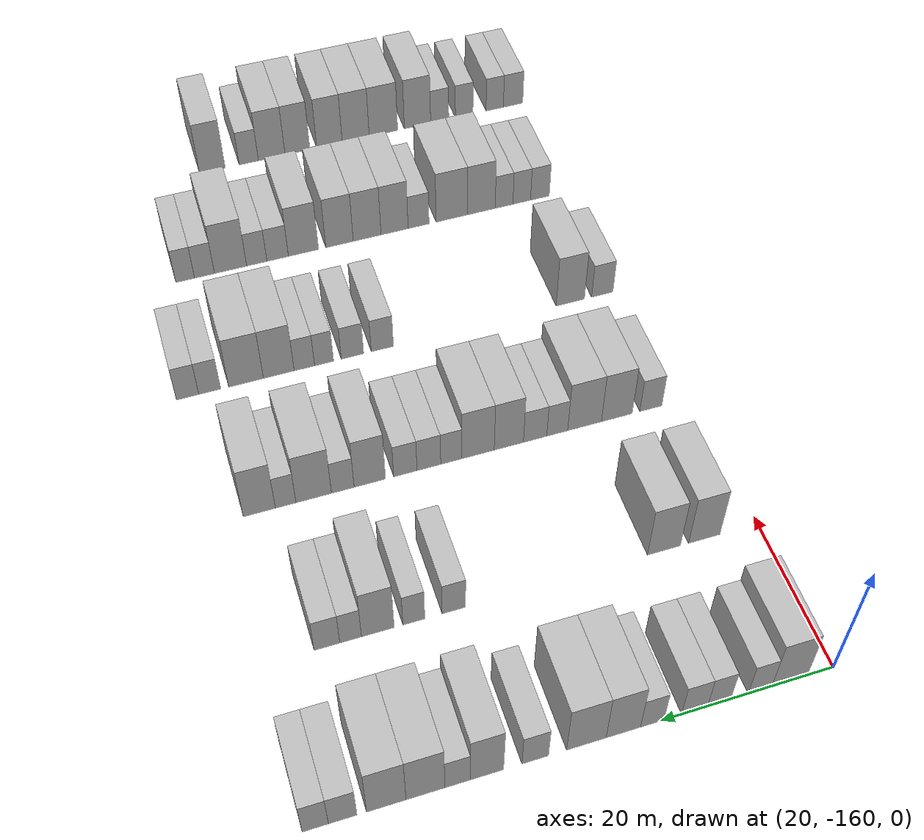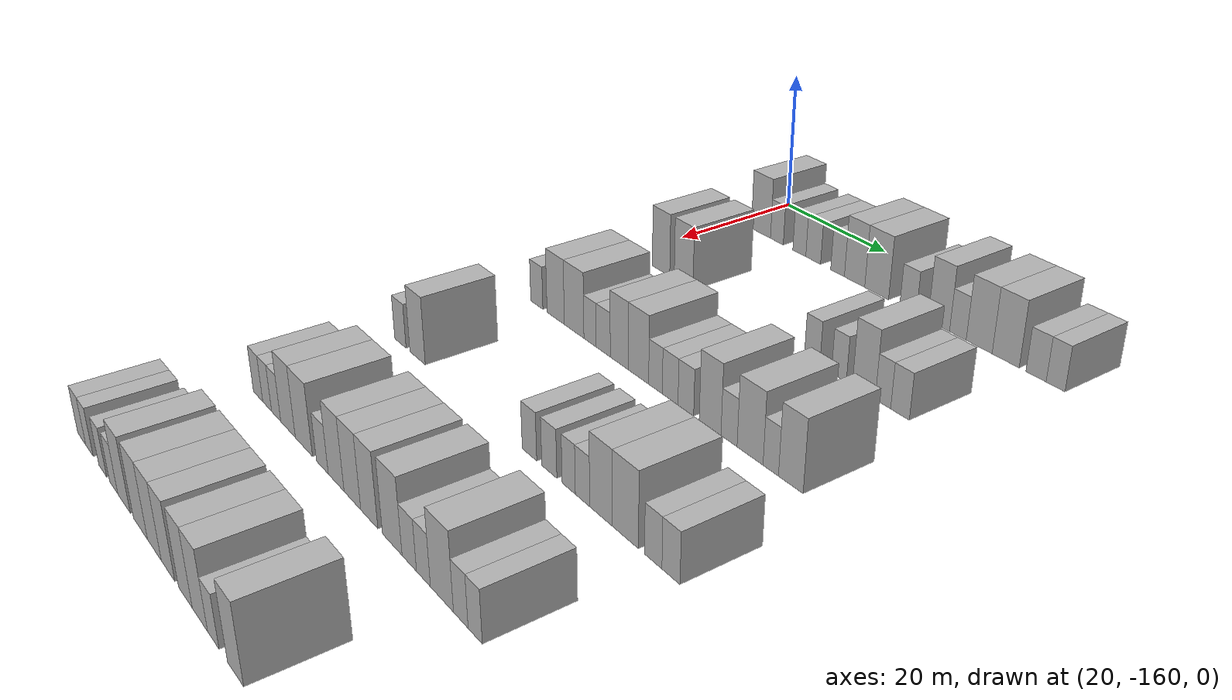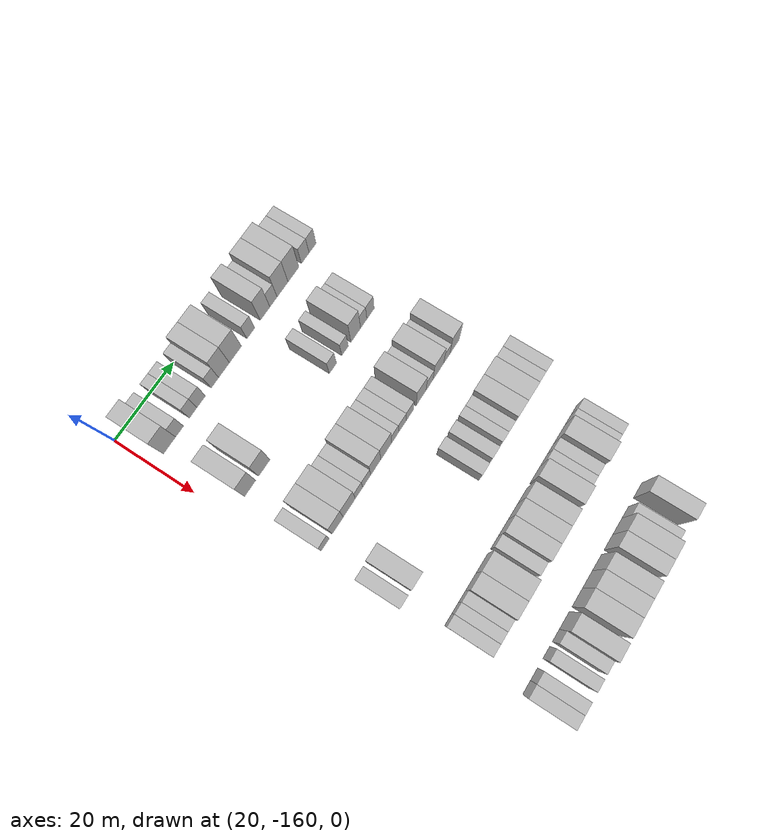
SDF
<sdf version="1.6">
 <world name="default">
  <model name="building_47">
   <static>1</static>
   <pose>25.0000 -154.8127 0 0.000000 0.000000 0.000000</pose>
   <link name="link">
    <pose>0 0 4.50 0 0 0</pose>
    <collision name="collision"><geometry><box><size>10.0000 4.1857 9.0000</size></box></geometry></collision>
    <visual name="visual">
     <cast_shadows>0</cast_shadows>
     <geometry><box><size>10.0000 4.1857 9.0000</size></box></geometry>
     <material>
      <script>
       <uri>model://HANNAS_wall/materials/scripts</uri>
       <uri>model://HANNAS_wall/materials/textures</uri>
       <name>vrc/HANNAS_wall</name>
      </script>
     </material>
    </visual>
   </link>
  </model>
  <model name="building_48">
   <static>1</static>
   <pose>25.0000 -151.3458 0 0.000000 0.000000 0.000000</pose>
   <link name="link">
    <pose>0 0 3.00 0 0 0</pose>
    <collision name="collision"><geometry><box><size>10.0000 2.7481 6.0000</size></box></geometry></collision>
    <visual name="visual">
     <cast_shadows>0</cast_shadows>
     <geometry><box><size>10.0000 2.7481 6.0000</size></box></geometry>
     <material>
      <script>
       <uri>model://HANNAS_wall/materials/scripts</uri>
       <uri>model://HANNAS_wall/materials/textures</uri>
       <name>vrc/HANNAS_wall</name>
      </script>
     </material>
    </visual>
   </link>
  </model>
  <model name="building_49">
   <static>1</static>
   <pose>25.0000 -146.6319 0 0.000000 0.000000 0.000000</pose>
   <link name="link">
    <pose>0 0 3.00 0 0 0</pose>
    <collision name="collision"><geometry><box><size>10.0000 2.6798 6.0000</size></box></geometry></collision>
    <visual name="visual">
     <cast_shadows>0</cast_shadows>
     <geometry><box><size>10.0000 2.6798 6.0000</size></box></geometry>
     <material>
      <script>
       <uri>model://HANNAS_wall/materials/scripts</uri>
       <uri>model://HANNAS_wall/materials/textures</uri>
       <name>vrc/HANNAS_wall</name>
      </script>
     </material>
    </visual>
   </link>
  </model>
  <model name="building_50">
   <static>1</static>
   <pose>25.0000 -143.8004 0 0.000000 0.000000 0.000000</pose>
   <link name="link">
    <pose>0 0 3.00 0 0 0</pose>
    <collision name="collision"><geometry><box><size>10.0000 2.9833 6.0000</size></box></geometry></collision>
    <visual name="visual">
     <cast_shadows>0</cast_shadows>
     <geometry><box><size>10.0000 2.9833 6.0000</size></box></geometry>
     <material>
      <script>
       <uri>model://HANNAS_wall/materials/scripts</uri>
       <uri>model://HANNAS_wall/materials/textures</uri>
       <name>vrc/HANNAS_wall</name>
      </script>
     </material>
    </visual>
   </link>
  </model>
  <model name="building_51">
   <static>1</static>
   <pose>25.0000 -138.9763 0 0.000000 0.000000 0.000000</pose>
   <link name="link">
    <pose>0 0 3.00 0 0 0</pose>
    <collision name="collision"><geometry><box><size>10.0000 2.6649 6.0000</size></box></geometry></collision>
    <visual name="visual">
     <cast_shadows>0</cast_shadows>
     <geometry><box><size>10.0000 2.6649 6.0000</size></box></geometry>
     <material>
      <script>
       <uri>model://HANNAS_wall/materials/scripts</uri>
       <uri>model://HANNAS_wall/materials/textures</uri>
       <name>vrc/HANNAS_wall</name>
      </script>
     </material>
    </visual>
   </link>
  </model>
  <model name="building_52">
   <static>1</static>
   <pose>25.0000 -135.7152 0 0.000000 0.000000 0.000000</pose>
   <link name="link">
    <pose>0 0 4.50 0 0 0</pose>
    <collision name="collision"><geometry><box><size>10.0000 3.8572 9.0000</size></box></geometry></collision>
    <visual name="visual">
     <cast_shadows>0</cast_shadows>
     <geometry><box><size>10.0000 3.8572 9.0000</size></box></geometry>
     <material>
      <script>
       <uri>model://HANNAS_wall/materials/scripts</uri>
       <uri>model://HANNAS_wall/materials/textures</uri>
       <name>vrc/HANNAS_wall</name>
      </script>
     </material>
    </visual>
   </link>
  </model>
  <model name="building_53">
   <static>1</static>
   <pose>25.0000 -131.5983 0 0.000000 0.000000 0.000000</pose>
   <link name="link">
    <pose>0 0 4.50 0 0 0</pose>
    <collision name="collision"><geometry><box><size>10.0000 4.3767 9.0000</size></box></geometry></collision>
    <visual name="visual">
     <cast_shadows>0</cast_shadows>
     <geometry><box><size>10.0000 4.3767 9.0000</size></box></geometry>
     <material>
      <script>
       <uri>model://HANNAS_wall/materials/scripts</uri>
       <uri>model://HANNAS_wall/materials/textures</uri>
       <name>vrc/HANNAS_wall</name>
      </script>
     </material>
    </visual>
   </link>
  </model>
  <model name="building_54">
   <static>1</static>
   <pose>25.0000 -125.9597 0 0.000000 0.000000 0.000000</pose>
   <link name="link">
    <pose>0 0 3.00 0 0 0</pose>
    <collision name="collision"><geometry><box><size>10.0000 2.9005 6.0000</size></box></geometry></collision>
    <visual name="visual">
     <cast_shadows>0</cast_shadows>
     <geometry><box><size>10.0000 2.9005 6.0000</size></box></geometry>
     <material>
      <script>
       <uri>model://HANNAS_wall/materials/scripts</uri>
       <uri>model://HANNAS_wall/materials/textures</uri>
       <name>vrc/HANNAS_wall</name>
      </script>
     </material>
    </visual>
   </link>
  </model>
  <model name="building_55">
   <static>1</static>
   <pose>25.0000 -120.7064 0 0.000000 0.000000 0.000000</pose>
   <link name="link">
    <pose>0 0 4.50 0 0 0</pose>
    <collision name="collision"><geometry><box><size>10.0000 3.6061 9.0000</size></box></geometry></collision>
    <visual name="visual">
     <cast_shadows>0</cast_shadows>
     <geometry><box><size>10.0000 3.6061 9.0000</size></box></geometry>
     <material>
      <script>
       <uri>model://HANNAS_wall/materials/scripts</uri>
       <uri>model://HANNAS_wall/materials/textures</uri>
       <name>vrc/HANNAS_wall</name>
      </script>
     </material>
    </visual>
   </link>
  </model>
  <model name="building_56">
   <static>1</static>
   <pose>25.0000 -117.5425 0 0.000000 0.000000 0.000000</pose>
   <link name="link">
    <pose>0 0 3.00 0 0 0</pose>
    <collision name="collision"><geometry><box><size>10.0000 2.7217 6.0000</size></box></geometry></collision>
    <visual name="visual">
     <cast_shadows>0</cast_shadows>
     <geometry><box><size>10.0000 2.7217 6.0000</size></box></geometry>
     <material>
      <script>
       <uri>model://HANNAS_wall/materials/scripts</uri>
       <uri>model://HANNAS_wall/materials/textures</uri>
       <name>vrc/HANNAS_wall</name>
      </script>
     </material>
    </visual>
   </link>
  </model>
  <model name="building_57">
   <static>1</static>
   <pose>25.0000 -114.1251 0 0.000000 0.000000 0.000000</pose>
   <link name="link">
    <pose>0 0 4.50 0 0 0</pose>
    <collision name="collision"><geometry><box><size>10.0000 4.1131 9.0000</size></box></geometry></collision>
    <visual name="visual">
     <cast_shadows>0</cast_shadows>
     <geometry><box><size>10.0000 4.1131 9.0000</size></box></geometry>
     <material>
      <script>
       <uri>model://HANNAS_wall/materials/scripts</uri>
       <uri>model://HANNAS_wall/materials/textures</uri>
       <name>vrc/HANNAS_wall</name>
      </script>
     </material>
    </visual>
   </link>
  </model>
  <model name="building_58">
   <static>1</static>
   <pose>25.0000 -109.9972 0 0.000000 0.000000 0.000000</pose>
   <link name="link">
    <pose>0 0 4.50 0 0 0</pose>
    <collision name="collision"><geometry><box><size>10.0000 4.1427 9.0000</size></box></geometry></collision>
    <visual name="visual">
     <cast_shadows>0</cast_shadows>
     <geometry><box><size>10.0000 4.1427 9.0000</size></box></geometry>
     <material>
      <script>
       <uri>model://HANNAS_wall/materials/scripts</uri>
       <uri>model://HANNAS_wall/materials/textures</uri>
       <name>vrc/HANNAS_wall</name>
      </script>
     </material>
    </visual>
   </link>
  </model>
  <model name="building_59">
   <static>1</static>
   <pose>25.0000 -105.4432 0 0.000000 0.000000 0.000000</pose>
   <link name="link">
    <pose>0 0 3.00 0 0 0</pose>
    <collision name="collision"><geometry><box><size>10.0000 2.9653 6.0000</size></box></geometry></collision>
    <visual name="visual">
     <cast_shadows>0</cast_shadows>
     <geometry><box><size>10.0000 2.9653 6.0000</size></box></geometry>
     <material>
      <script>
       <uri>model://HANNAS_wall/materials/scripts</uri>
       <uri>model://HANNAS_wall/materials/textures</uri>
       <name>vrc/HANNAS_wall</name>
      </script>
     </material>
    </visual>
   </link>
  </model>
  <model name="building_60">
   <static>1</static>
   <pose>25.0000 -102.6076 0 0.000000 0.000000 0.000000</pose>
   <link name="link">
    <pose>0 0 3.00 0 0 0</pose>
    <collision name="collision"><geometry><box><size>10.0000 2.7059 6.0000</size></box></geometry></collision>
    <visual name="visual">
     <cast_shadows>0</cast_shadows>
     <geometry><box><size>10.0000 2.7059 6.0000</size></box></geometry>
     <material>
      <script>
       <uri>model://HANNAS_wall/materials/scripts</uri>
       <uri>model://HANNAS_wall/materials/textures</uri>
       <name>vrc/HANNAS_wall</name>
      </script>
     </material>
    </visual>
   </link>
  </model>
  <model name="building_213">
   <static>1</static>
   <pose>44.0000 -153.2522 0 0.000000 0.000000 0.000000</pose>
   <link name="link">
    <pose>0 0 4.50 0 0 0</pose>
    <collision name="collision"><geometry><box><size>10.0000 3.8989 9.0000</size></box></geometry></collision>
    <visual name="visual">
     <cast_shadows>0</cast_shadows>
     <geometry><box><size>10.0000 3.8989 9.0000</size></box></geometry>
     <material>
      <script>
       <uri>model://HANNAS_wall/materials/scripts</uri>
       <uri>model://HANNAS_wall/materials/textures</uri>
       <name>vrc/HANNAS_wall</name>
      </script>
     </material>
    </visual>
   </link>
  </model>
  <model name="building_214">
   <static>1</static>
   <pose>44.0000 -148.2790 0 0.000000 0.000000 0.000000</pose>
   <link name="link">
    <pose>0 0 4.50 0 0 0</pose>
    <collision name="collision"><geometry><box><size>10.0000 4.0474 9.0000</size></box></geometry></collision>
    <visual name="visual">
     <cast_shadows>0</cast_shadows>
     <geometry><box><size>10.0000 4.0474 9.0000</size></box></geometry>
     <material>
      <script>
       <uri>model://HANNAS_wall/materials/scripts</uri>
       <uri>model://HANNAS_wall/materials/textures</uri>
       <name>vrc/HANNAS_wall</name>
      </script>
     </material>
    </visual>
   </link>
  </model>
  <model name="building_215">
   <static>1</static>
   <pose>44.0000 -123.1917 0 0.000000 0.000000 0.000000</pose>
   <link name="link">
    <pose>0 0 3.00 0 0 0</pose>
    <collision name="collision"><geometry><box><size>10.0000 2.7090 6.0000</size></box></geometry></collision>
    <visual name="visual">
     <cast_shadows>0</cast_shadows>
     <geometry><box><size>10.0000 2.7090 6.0000</size></box></geometry>
     <material>
      <script>
       <uri>model://HANNAS_wall/materials/scripts</uri>
       <uri>model://HANNAS_wall/materials/textures</uri>
       <name>vrc/HANNAS_wall</name>
      </script>
     </material>
    </visual>
   </link>
  </model>
  <model name="building_216">
   <static>1</static>
   <pose>44.0000 -118.5821 0 0.000000 0.000000 0.000000</pose>
   <link name="link">
    <pose>0 0 3.00 0 0 0</pose>
    <collision name="collision"><geometry><box><size>10.0000 2.5103 6.0000</size></box></geometry></collision>
    <visual name="visual">
     <cast_shadows>0</cast_shadows>
     <geometry><box><size>10.0000 2.5103 6.0000</size></box></geometry>
     <material>
      <script>
       <uri>model://HANNAS_wall/materials/scripts</uri>
       <uri>model://HANNAS_wall/materials/textures</uri>
       <name>vrc/HANNAS_wall</name>
      </script>
     </material>
    </visual>
   </link>
  </model>
  <model name="building_217">
   <static>1</static>
   <pose>44.0000 -114.4714 0 0.000000 0.000000 0.000000</pose>
   <link name="link">
    <pose>0 0 4.50 0 0 0</pose>
    <collision name="collision"><geometry><box><size>10.0000 3.7112 9.0000</size></box></geometry></collision>
    <visual name="visual">
     <cast_shadows>0</cast_shadows>
     <geometry><box><size>10.0000 3.7112 9.0000</size></box></geometry>
     <material>
      <script>
       <uri>model://HANNAS_wall/materials/scripts</uri>
       <uri>model://HANNAS_wall/materials/textures</uri>
       <name>vrc/HANNAS_wall</name>
      </script>
     </material>
    </visual>
   </link>
  </model>
  <model name="building_218">
   <static>1</static>
   <pose>44.0000 -111.3944 0 0.000000 0.000000 0.000000</pose>
   <link name="link">
    <pose>0 0 3.00 0 0 0</pose>
    <collision name="collision"><geometry><box><size>10.0000 2.4427 6.0000</size></box></geometry></collision>
    <visual name="visual">
     <cast_shadows>0</cast_shadows>
     <geometry><box><size>10.0000 2.4427 6.0000</size></box></geometry>
     <material>
      <script>
       <uri>model://HANNAS_wall/materials/scripts</uri>
       <uri>model://HANNAS_wall/materials/textures</uri>
       <name>vrc/HANNAS_wall</name>
      </script>
     </material>
    </visual>
   </link>
  </model>
  <model name="building_219">
   <static>1</static>
   <pose>44.0000 -108.7321 0 0.000000 0.000000 0.000000</pose>
   <link name="link">
    <pose>0 0 3.00 0 0 0</pose>
    <collision name="collision"><geometry><box><size>10.0000 2.8820 6.0000</size></box></geometry></collision>
    <visual name="visual">
     <cast_shadows>0</cast_shadows>
     <geometry><box><size>10.0000 2.8820 6.0000</size></box></geometry>
     <material>
      <script>
       <uri>model://HANNAS_wall/materials/scripts</uri>
       <uri>model://HANNAS_wall/materials/textures</uri>
       <name>vrc/HANNAS_wall</name>
      </script>
     </material>
    </visual>
   </link>
  </model>
  <model name="building_377">
   <static>1</static>
   <pose>63.0000 -154.5095 0 0.000000 0.000000 0.000000</pose>
   <link name="link">
    <pose>0 0 3.00 0 0 0</pose>
    <collision name="collision"><geometry><box><size>10.0000 2.9000 6.0000</size></box></geometry></collision>
    <visual name="visual">
     <cast_shadows>0</cast_shadows>
     <geometry><box><size>10.0000 2.9000 6.0000</size></box></geometry>
     <material>
      <script>
       <uri>model://HANNAS_wall/materials/scripts</uri>
       <uri>model://HANNAS_wall/materials/textures</uri>
       <name>vrc/HANNAS_wall</name>
      </script>
     </material>
    </visual>
   </link>
  </model>
  <model name="building_378">
   <static>1</static>
   <pose>63.0000 -150.0449 0 0.000000 0.000000 0.000000</pose>
   <link name="link">
    <pose>0 0 4.50 0 0 0</pose>
    <collision name="collision"><geometry><box><size>10.0000 4.0292 9.0000</size></box></geometry></collision>
    <visual name="visual">
     <cast_shadows>0</cast_shadows>
     <geometry><box><size>10.0000 4.0292 9.0000</size></box></geometry>
     <material>
      <script>
       <uri>model://HANNAS_wall/materials/scripts</uri>
       <uri>model://HANNAS_wall/materials/textures</uri>
       <name>vrc/HANNAS_wall</name>
      </script>
     </material>
    </visual>
   </link>
  </model>
  <model name="building_379">
   <static>1</static>
   <pose>63.0000 -145.8440 0 0.000000 0.000000 0.000000</pose>
   <link name="link">
    <pose>0 0 4.50 0 0 0</pose>
    <collision name="collision"><geometry><box><size>10.0000 4.3724 9.0000</size></box></geometry></collision>
    <visual name="visual">
     <cast_shadows>0</cast_shadows>
     <geometry><box><size>10.0000 4.3724 9.0000</size></box></geometry>
     <material>
      <script>
       <uri>model://HANNAS_wall/materials/scripts</uri>
       <uri>model://HANNAS_wall/materials/textures</uri>
       <name>vrc/HANNAS_wall</name>
      </script>
     </material>
    </visual>
   </link>
  </model>
  <model name="building_380">
   <static>1</static>
   <pose>63.0000 -142.3170 0 0.000000 0.000000 0.000000</pose>
   <link name="link">
    <pose>0 0 3.00 0 0 0</pose>
    <collision name="collision"><geometry><box><size>10.0000 2.6815 6.0000</size></box></geometry></collision>
    <visual name="visual">
     <cast_shadows>0</cast_shadows>
     <geometry><box><size>10.0000 2.6815 6.0000</size></box></geometry>
     <material>
      <script>
       <uri>model://HANNAS_wall/materials/scripts</uri>
       <uri>model://HANNAS_wall/materials/textures</uri>
       <name>vrc/HANNAS_wall</name>
      </script>
     </material>
    </visual>
   </link>
  </model>
  <model name="building_381">
   <static>1</static>
   <pose>63.0000 -139.4863 0 0.000000 0.000000 0.000000</pose>
   <link name="link">
    <pose>0 0 3.00 0 0 0</pose>
    <collision name="collision"><geometry><box><size>10.0000 2.9799 6.0000</size></box></geometry></collision>
    <visual name="visual">
     <cast_shadows>0</cast_shadows>
     <geometry><box><size>10.0000 2.9799 6.0000</size></box></geometry>
     <material>
      <script>
       <uri>model://HANNAS_wall/materials/scripts</uri>
       <uri>model://HANNAS_wall/materials/textures</uri>
       <name>vrc/HANNAS_wall</name>
      </script>
     </material>
    </visual>
   </link>
  </model>
  <model name="building_382">
   <static>1</static>
   <pose>63.0000 -136.1417 0 0.000000 0.000000 0.000000</pose>
   <link name="link">
    <pose>0 0 4.50 0 0 0</pose>
    <collision name="collision"><geometry><box><size>10.0000 3.7093 9.0000</size></box></geometry></collision>
    <visual name="visual">
     <cast_shadows>0</cast_shadows>
     <geometry><box><size>10.0000 3.7093 9.0000</size></box></geometry>
     <material>
      <script>
       <uri>model://HANNAS_wall/materials/scripts</uri>
       <uri>model://HANNAS_wall/materials/textures</uri>
       <name>vrc/HANNAS_wall</name>
      </script>
     </material>
    </visual>
   </link>
  </model>
  <model name="building_383">
   <static>1</static>
   <pose>63.0000 -132.2561 0 0.000000 0.000000 0.000000</pose>
   <link name="link">
    <pose>0 0 4.50 0 0 0</pose>
    <collision name="collision"><geometry><box><size>10.0000 4.0619 9.0000</size></box></geometry></collision>
    <visual name="visual">
     <cast_shadows>0</cast_shadows>
     <geometry><box><size>10.0000 4.0619 9.0000</size></box></geometry>
     <material>
      <script>
       <uri>model://HANNAS_wall/materials/scripts</uri>
       <uri>model://HANNAS_wall/materials/textures</uri>
       <name>vrc/HANNAS_wall</name>
      </script>
     </material>
    </visual>
   </link>
  </model>
  <model name="building_384">
   <static>1</static>
   <pose>63.0000 -128.9092 0 0.000000 0.000000 0.000000</pose>
   <link name="link">
    <pose>0 0 3.00 0 0 0</pose>
    <collision name="collision"><geometry><box><size>10.0000 2.6318 6.0000</size></box></geometry></collision>
    <visual name="visual">
     <cast_shadows>0</cast_shadows>
     <geometry><box><size>10.0000 2.6318 6.0000</size></box></geometry>
     <material>
      <script>
       <uri>model://HANNAS_wall/materials/scripts</uri>
       <uri>model://HANNAS_wall/materials/textures</uri>
       <name>vrc/HANNAS_wall</name>
      </script>
     </material>
    </visual>
   </link>
  </model>
  <model name="building_385">
   <static>1</static>
   <pose>63.0000 -126.1180 0 0.000000 0.000000 0.000000</pose>
   <link name="link">
    <pose>0 0 3.00 0 0 0</pose>
    <collision name="collision"><geometry><box><size>10.0000 2.9507 6.0000</size></box></geometry></collision>
    <visual name="visual">
     <cast_shadows>0</cast_shadows>
     <geometry><box><size>10.0000 2.9507 6.0000</size></box></geometry>
     <material>
      <script>
       <uri>model://HANNAS_wall/materials/scripts</uri>
       <uri>model://HANNAS_wall/materials/textures</uri>
       <name>vrc/HANNAS_wall</name>
      </script>
     </material>
    </visual>
   </link>
  </model>
  <model name="building_386">
   <static>1</static>
   <pose>63.0000 -123.2066 0 0.000000 0.000000 0.000000</pose>
   <link name="link">
    <pose>0 0 3.00 0 0 0</pose>
    <collision name="collision"><geometry><box><size>10.0000 2.8719 6.0000</size></box></geometry></collision>
    <visual name="visual">
     <cast_shadows>0</cast_shadows>
     <geometry><box><size>10.0000 2.8719 6.0000</size></box></geometry>
     <material>
      <script>
       <uri>model://HANNAS_wall/materials/scripts</uri>
       <uri>model://HANNAS_wall/materials/textures</uri>
       <name>vrc/HANNAS_wall</name>
      </script>
     </material>
    </visual>
   </link>
  </model>
  <model name="building_387">
   <static>1</static>
   <pose>63.0000 -118.8583 0 0.000000 0.000000 0.000000</pose>
   <link name="link">
    <pose>0 0 4.50 0 0 0</pose>
    <collision name="collision"><geometry><box><size>10.0000 3.8247 9.0000</size></box></geometry></collision>
    <visual name="visual">
     <cast_shadows>0</cast_shadows>
     <geometry><box><size>10.0000 3.8247 9.0000</size></box></geometry>
     <material>
      <script>
       <uri>model://HANNAS_wall/materials/scripts</uri>
       <uri>model://HANNAS_wall/materials/textures</uri>
       <name>vrc/HANNAS_wall</name>
      </script>
     </material>
    </visual>
   </link>
  </model>
  <model name="building_388">
   <static>1</static>
   <pose>63.0000 -115.5741 0 0.000000 0.000000 0.000000</pose>
   <link name="link">
    <pose>0 0 3.00 0 0 0</pose>
    <collision name="collision"><geometry><box><size>10.0000 2.7438 6.0000</size></box></geometry></collision>
    <visual name="visual">
     <cast_shadows>0</cast_shadows>
     <geometry><box><size>10.0000 2.7438 6.0000</size></box></geometry>
     <material>
      <script>
       <uri>model://HANNAS_wall/materials/scripts</uri>
       <uri>model://HANNAS_wall/materials/textures</uri>
       <name>vrc/HANNAS_wall</name>
      </script>
     </material>
    </visual>
   </link>
  </model>
  <model name="building_389">
   <static>1</static>
   <pose>63.0000 -112.0683 0 0.000000 0.000000 0.000000</pose>
   <link name="link">
    <pose>0 0 4.50 0 0 0</pose>
    <collision name="collision"><geometry><box><size>10.0000 4.2677 9.0000</size></box></geometry></collision>
    <visual name="visual">
     <cast_shadows>0</cast_shadows>
     <geometry><box><size>10.0000 4.2677 9.0000</size></box></geometry>
     <material>
      <script>
       <uri>model://HANNAS_wall/materials/scripts</uri>
       <uri>model://HANNAS_wall/materials/textures</uri>
       <name>vrc/HANNAS_wall</name>
      </script>
     </material>
    </visual>
   </link>
  </model>
  <model name="building_390">
   <static>1</static>
   <pose>63.0000 -108.7048 0 0.000000 0.000000 0.000000</pose>
   <link name="link">
    <pose>0 0 3.00 0 0 0</pose>
    <collision name="collision"><geometry><box><size>10.0000 2.4594 6.0000</size></box></geometry></collision>
    <visual name="visual">
     <cast_shadows>0</cast_shadows>
     <geometry><box><size>10.0000 2.4594 6.0000</size></box></geometry>
     <material>
      <script>
       <uri>model://HANNAS_wall/materials/scripts</uri>
       <uri>model://HANNAS_wall/materials/textures</uri>
       <name>vrc/HANNAS_wall</name>
      </script>
     </material>
    </visual>
   </link>
  </model>
  <model name="building_391">
   <static>1</static>
   <pose>63.0000 -105.5727 0 0.000000 0.000000 0.000000</pose>
   <link name="link">
    <pose>0 0 4.50 0 0 0</pose>
    <collision name="collision"><geometry><box><size>10.0000 3.8047 9.0000</size></box></geometry></collision>
    <visual name="visual">
     <cast_shadows>0</cast_shadows>
     <geometry><box><size>10.0000 3.8047 9.0000</size></box></geometry>
     <material>
      <script>
       <uri>model://HANNAS_wall/materials/scripts</uri>
       <uri>model://HANNAS_wall/materials/textures</uri>
       <name>vrc/HANNAS_wall</name>
      </script>
     </material>
    </visual>
   </link>
  </model>
  <model name="building_552">
   <static>1</static>
   <pose>82.0000 -155.5413 0 0.000000 0.000000 0.000000</pose>
   <link name="link">
    <pose>0 0 3.00 0 0 0</pose>
    <collision name="collision"><geometry><box><size>10.0000 2.9659 6.0000</size></box></geometry></collision>
    <visual name="visual">
     <cast_shadows>0</cast_shadows>
     <geometry><box><size>10.0000 2.9659 6.0000</size></box></geometry>
     <material>
      <script>
       <uri>model://HANNAS_wall/materials/scripts</uri>
       <uri>model://HANNAS_wall/materials/textures</uri>
       <name>vrc/HANNAS_wall</name>
      </script>
     </material>
    </visual>
   </link>
  </model>
  <model name="building_553">
   <static>1</static>
   <pose>82.0000 -151.1024 0 0.000000 0.000000 0.000000</pose>
   <link name="link">
    <pose>0 0 4.50 0 0 0</pose>
    <collision name="collision"><geometry><box><size>10.0000 3.9121 9.0000</size></box></geometry></collision>
    <visual name="visual">
     <cast_shadows>0</cast_shadows>
     <geometry><box><size>10.0000 3.9121 9.0000</size></box></geometry>
     <material>
      <script>
       <uri>model://HANNAS_wall/materials/scripts</uri>
       <uri>model://HANNAS_wall/materials/textures</uri>
       <name>vrc/HANNAS_wall</name>
      </script>
     </material>
    </visual>
   </link>
  </model>
  <model name="building_554">
   <static>1</static>
   <pose>82.0000 -125.7854 0 0.000000 0.000000 0.000000</pose>
   <link name="link">
    <pose>0 0 3.00 0 0 0</pose>
    <collision name="collision"><geometry><box><size>10.0000 2.9073 6.0000</size></box></geometry></collision>
    <visual name="visual">
     <cast_shadows>0</cast_shadows>
     <geometry><box><size>10.0000 2.9073 6.0000</size></box></geometry>
     <material>
      <script>
       <uri>model://HANNAS_wall/materials/scripts</uri>
       <uri>model://HANNAS_wall/materials/textures</uri>
       <name>vrc/HANNAS_wall</name>
      </script>
     </material>
    </visual>
   </link>
  </model>
  <model name="building_555">
   <static>1</static>
   <pose>82.0000 -121.8788 0 0.000000 0.000000 0.000000</pose>
   <link name="link">
    <pose>0 0 3.00 0 0 0</pose>
    <collision name="collision"><geometry><box><size>10.0000 2.9058 6.0000</size></box></geometry></collision>
    <visual name="visual">
     <cast_shadows>0</cast_shadows>
     <geometry><box><size>10.0000 2.9058 6.0000</size></box></geometry>
     <material>
      <script>
       <uri>model://HANNAS_wall/materials/scripts</uri>
       <uri>model://HANNAS_wall/materials/textures</uri>
       <name>vrc/HANNAS_wall</name>
      </script>
     </material>
    </visual>
   </link>
  </model>
  <model name="building_556">
   <static>1</static>
   <pose>82.0000 -118.1994 0 0.000000 0.000000 0.000000</pose>
   <link name="link">
    <pose>0 0 3.00 0 0 0</pose>
    <collision name="collision"><geometry><box><size>10.0000 2.4531 6.0000</size></box></geometry></collision>
    <visual name="visual">
     <cast_shadows>0</cast_shadows>
     <geometry><box><size>10.0000 2.4531 6.0000</size></box></geometry>
     <material>
      <script>
       <uri>model://HANNAS_wall/materials/scripts</uri>
       <uri>model://HANNAS_wall/materials/textures</uri>
       <name>vrc/HANNAS_wall</name>
      </script>
     </material>
    </visual>
   </link>
  </model>
  <model name="building_557">
   <static>1</static>
   <pose>82.0000 -115.6648 0 0.000000 0.000000 0.000000</pose>
   <link name="link">
    <pose>0 0 3.00 0 0 0</pose>
    <collision name="collision"><geometry><box><size>10.0000 2.6161 6.0000</size></box></geometry></collision>
    <visual name="visual">
     <cast_shadows>0</cast_shadows>
     <geometry><box><size>10.0000 2.6161 6.0000</size></box></geometry>
     <material>
      <script>
       <uri>model://HANNAS_wall/materials/scripts</uri>
       <uri>model://HANNAS_wall/materials/textures</uri>
       <name>vrc/HANNAS_wall</name>
      </script>
     </material>
    </visual>
   </link>
  </model>
  <model name="building_558">
   <static>1</static>
   <pose>82.0000 -112.3930 0 0.000000 0.000000 0.000000</pose>
   <link name="link">
    <pose>0 0 4.50 0 0 0</pose>
    <collision name="collision"><geometry><box><size>10.0000 3.9275 9.0000</size></box></geometry></collision>
    <visual name="visual">
     <cast_shadows>0</cast_shadows>
     <geometry><box><size>10.0000 3.9275 9.0000</size></box></geometry>
     <material>
      <script>
       <uri>model://HANNAS_wall/materials/scripts</uri>
       <uri>model://HANNAS_wall/materials/textures</uri>
       <name>vrc/HANNAS_wall</name>
      </script>
     </material>
    </visual>
   </link>
  </model>
  <model name="building_559">
   <static>1</static>
   <pose>82.0000 -108.2308 0 0.000000 0.000000 0.000000</pose>
   <link name="link">
    <pose>0 0 4.50 0 0 0</pose>
    <collision name="collision"><geometry><box><size>10.0000 4.3969 9.0000</size></box></geometry></collision>
    <visual name="visual">
     <cast_shadows>0</cast_shadows>
     <geometry><box><size>10.0000 4.3969 9.0000</size></box></geometry>
     <material>
      <script>
       <uri>model://HANNAS_wall/materials/scripts</uri>
       <uri>model://HANNAS_wall/materials/textures</uri>
       <name>vrc/HANNAS_wall</name>
      </script>
     </material>
    </visual>
   </link>
  </model>
  <model name="building_560">
   <static>1</static>
   <pose>82.0000 -103.6570 0 0.000000 0.000000 0.000000</pose>
   <link name="link">
    <pose>0 0 3.00 0 0 0</pose>
    <collision name="collision"><geometry><box><size>10.0000 2.7507 6.0000</size></box></geometry></collision>
    <visual name="visual">
     <cast_shadows>0</cast_shadows>
     <geometry><box><size>10.0000 2.7507 6.0000</size></box></geometry>
     <material>
      <script>
       <uri>model://HANNAS_wall/materials/scripts</uri>
       <uri>model://HANNAS_wall/materials/textures</uri>
       <name>vrc/HANNAS_wall</name>
      </script>
     </material>
    </visual>
   </link>
  </model>
  <model name="building_561">
   <static>1</static>
   <pose>82.0000 -100.8853 0 0.000000 0.000000 0.000000</pose>
   <link name="link">
    <pose>0 0 3.00 0 0 0</pose>
    <collision name="collision"><geometry><box><size>10.0000 2.7928 6.0000</size></box></geometry></collision>
    <visual name="visual">
     <cast_shadows>0</cast_shadows>
     <geometry><box><size>10.0000 2.7928 6.0000</size></box></geometry>
     <material>
      <script>
       <uri>model://HANNAS_wall/materials/scripts</uri>
       <uri>model://HANNAS_wall/materials/textures</uri>
       <name>vrc/HANNAS_wall</name>
      </script>
     </material>
    </visual>
   </link>
  </model>
  <model name="building_715">
   <static>1</static>
   <pose>101.0000 -153.7319 0 0.000000 0.000000 0.000000</pose>
   <link name="link">
    <pose>0 0 3.00 0 0 0</pose>
    <collision name="collision"><geometry><box><size>10.0000 2.7387 6.0000</size></box></geometry></collision>
    <visual name="visual">
     <cast_shadows>0</cast_shadows>
     <geometry><box><size>10.0000 2.7387 6.0000</size></box></geometry>
     <material>
      <script>
       <uri>model://HANNAS_wall/materials/scripts</uri>
       <uri>model://HANNAS_wall/materials/textures</uri>
       <name>vrc/HANNAS_wall</name>
      </script>
     </material>
    </visual>
   </link>
  </model>
  <model name="building_716">
   <static>1</static>
   <pose>101.0000 -151.0811 0 0.000000 0.000000 0.000000</pose>
   <link name="link">
    <pose>0 0 3.00 0 0 0</pose>
    <collision name="collision"><geometry><box><size>10.0000 2.5628 6.0000</size></box></geometry></collision>
    <visual name="visual">
     <cast_shadows>0</cast_shadows>
     <geometry><box><size>10.0000 2.5628 6.0000</size></box></geometry>
     <material>
      <script>
       <uri>model://HANNAS_wall/materials/scripts</uri>
       <uri>model://HANNAS_wall/materials/textures</uri>
       <name>vrc/HANNAS_wall</name>
      </script>
     </material>
    </visual>
   </link>
  </model>
  <model name="building_717">
   <static>1</static>
   <pose>101.0000 -148.5158 0 0.000000 0.000000 0.000000</pose>
   <link name="link">
    <pose>0 0 3.00 0 0 0</pose>
    <collision name="collision"><geometry><box><size>10.0000 2.5678 6.0000</size></box></geometry></collision>
    <visual name="visual">
     <cast_shadows>0</cast_shadows>
     <geometry><box><size>10.0000 2.5678 6.0000</size></box></geometry>
     <material>
      <script>
       <uri>model://HANNAS_wall/materials/scripts</uri>
       <uri>model://HANNAS_wall/materials/textures</uri>
       <name>vrc/HANNAS_wall</name>
      </script>
     </material>
    </visual>
   </link>
  </model>
  <model name="building_718">
   <static>1</static>
   <pose>101.0000 -145.2437 0 0.000000 0.000000 0.000000</pose>
   <link name="link">
    <pose>0 0 4.50 0 0 0</pose>
    <collision name="collision"><geometry><box><size>10.0000 3.9763 9.0000</size></box></geometry></collision>
    <visual name="visual">
     <cast_shadows>0</cast_shadows>
     <geometry><box><size>10.0000 3.9763 9.0000</size></box></geometry>
     <material>
      <script>
       <uri>model://HANNAS_wall/materials/scripts</uri>
       <uri>model://HANNAS_wall/materials/textures</uri>
       <name>vrc/HANNAS_wall</name>
      </script>
     </material>
    </visual>
   </link>
  </model>
  <model name="building_719">
   <static>1</static>
   <pose>101.0000 -141.0120 0 0.000000 0.000000 0.000000</pose>
   <link name="link">
    <pose>0 0 4.50 0 0 0</pose>
    <collision name="collision"><geometry><box><size>10.0000 4.4873 9.0000</size></box></geometry></collision>
    <visual name="visual">
     <cast_shadows>0</cast_shadows>
     <geometry><box><size>10.0000 4.4873 9.0000</size></box></geometry>
     <material>
      <script>
       <uri>model://HANNAS_wall/materials/scripts</uri>
       <uri>model://HANNAS_wall/materials/textures</uri>
       <name>vrc/HANNAS_wall</name>
      </script>
     </material>
    </visual>
   </link>
  </model>
  <model name="building_720">
   <static>1</static>
   <pose>101.0000 -136.2877 0 0.000000 0.000000 0.000000</pose>
   <link name="link">
    <pose>0 0 3.00 0 0 0</pose>
    <collision name="collision"><geometry><box><size>10.0000 2.9612 6.0000</size></box></geometry></collision>
    <visual name="visual">
     <cast_shadows>0</cast_shadows>
     <geometry><box><size>10.0000 2.9612 6.0000</size></box></geometry>
     <material>
      <script>
       <uri>model://HANNAS_wall/materials/scripts</uri>
       <uri>model://HANNAS_wall/materials/textures</uri>
       <name>vrc/HANNAS_wall</name>
      </script>
     </material>
    </visual>
   </link>
  </model>
  <model name="building_721">
   <static>1</static>
   <pose>101.0000 -132.9040 0 0.000000 0.000000 0.000000</pose>
   <link name="link">
    <pose>0 0 4.50 0 0 0</pose>
    <collision name="collision"><geometry><box><size>10.0000 3.8063 9.0000</size></box></geometry></collision>
    <visual name="visual">
     <cast_shadows>0</cast_shadows>
     <geometry><box><size>10.0000 3.8063 9.0000</size></box></geometry>
     <material>
      <script>
       <uri>model://HANNAS_wall/materials/scripts</uri>
       <uri>model://HANNAS_wall/materials/textures</uri>
       <name>vrc/HANNAS_wall</name>
      </script>
     </material>
    </visual>
   </link>
  </model>
  <model name="building_722">
   <static>1</static>
   <pose>101.0000 -129.0644 0 0.000000 0.000000 0.000000</pose>
   <link name="link">
    <pose>0 0 4.50 0 0 0</pose>
    <collision name="collision"><geometry><box><size>10.0000 3.8729 9.0000</size></box></geometry></collision>
    <visual name="visual">
     <cast_shadows>0</cast_shadows>
     <geometry><box><size>10.0000 3.8729 9.0000</size></box></geometry>
     <material>
      <script>
       <uri>model://HANNAS_wall/materials/scripts</uri>
       <uri>model://HANNAS_wall/materials/textures</uri>
       <name>vrc/HANNAS_wall</name>
      </script>
     </material>
    </visual>
   </link>
  </model>
  <model name="building_723">
   <static>1</static>
   <pose>101.0000 -125.2280 0 0.000000 0.000000 0.000000</pose>
   <link name="link">
    <pose>0 0 4.50 0 0 0</pose>
    <collision name="collision"><geometry><box><size>10.0000 3.7999 9.0000</size></box></geometry></collision>
    <visual name="visual">
     <cast_shadows>0</cast_shadows>
     <geometry><box><size>10.0000 3.7999 9.0000</size></box></geometry>
     <material>
      <script>
       <uri>model://HANNAS_wall/materials/scripts</uri>
       <uri>model://HANNAS_wall/materials/textures</uri>
       <name>vrc/HANNAS_wall</name>
      </script>
     </material>
    </visual>
   </link>
  </model>
  <model name="building_724">
   <static>1</static>
   <pose>101.0000 -120.2656 0 0.000000 0.000000 0.000000</pose>
   <link name="link">
    <pose>0 0 4.50 0 0 0</pose>
    <collision name="collision"><geometry><box><size>10.0000 4.1249 9.0000</size></box></geometry></collision>
    <visual name="visual">
     <cast_shadows>0</cast_shadows>
     <geometry><box><size>10.0000 4.1249 9.0000</size></box></geometry>
     <material>
      <script>
       <uri>model://HANNAS_wall/materials/scripts</uri>
       <uri>model://HANNAS_wall/materials/textures</uri>
       <name>vrc/HANNAS_wall</name>
      </script>
     </material>
    </visual>
   </link>
  </model>
  <model name="building_725">
   <static>1</static>
   <pose>101.0000 -116.7384 0 0.000000 0.000000 0.000000</pose>
   <link name="link">
    <pose>0 0 3.00 0 0 0</pose>
    <collision name="collision"><geometry><box><size>10.0000 2.9293 6.0000</size></box></geometry></collision>
    <visual name="visual">
     <cast_shadows>0</cast_shadows>
     <geometry><box><size>10.0000 2.9293 6.0000</size></box></geometry>
     <material>
      <script>
       <uri>model://HANNAS_wall/materials/scripts</uri>
       <uri>model://HANNAS_wall/materials/textures</uri>
       <name>vrc/HANNAS_wall</name>
      </script>
     </material>
    </visual>
   </link>
  </model>
  <model name="building_726">
   <static>1</static>
   <pose>101.0000 -113.9070 0 0.000000 0.000000 0.000000</pose>
   <link name="link">
    <pose>0 0 3.00 0 0 0</pose>
    <collision name="collision"><geometry><box><size>10.0000 2.7336 6.0000</size></box></geometry></collision>
    <visual name="visual">
     <cast_shadows>0</cast_shadows>
     <geometry><box><size>10.0000 2.7336 6.0000</size></box></geometry>
     <material>
      <script>
       <uri>model://HANNAS_wall/materials/scripts</uri>
       <uri>model://HANNAS_wall/materials/textures</uri>
       <name>vrc/HANNAS_wall</name>
      </script>
     </material>
    </visual>
   </link>
  </model>
  <model name="building_727">
   <static>1</static>
   <pose>101.0000 -110.3684 0 0.000000 0.000000 0.000000</pose>
   <link name="link">
    <pose>0 0 4.50 0 0 0</pose>
    <collision name="collision"><geometry><box><size>10.0000 4.3436 9.0000</size></box></geometry></collision>
    <visual name="visual">
     <cast_shadows>0</cast_shadows>
     <geometry><box><size>10.0000 4.3436 9.0000</size></box></geometry>
     <material>
      <script>
       <uri>model://HANNAS_wall/materials/scripts</uri>
       <uri>model://HANNAS_wall/materials/textures</uri>
       <name>vrc/HANNAS_wall</name>
      </script>
     </material>
    </visual>
   </link>
  </model>
  <model name="building_728">
   <static>1</static>
   <pose>101.0000 -106.8691 0 0.000000 0.000000 0.000000</pose>
   <link name="link">
    <pose>0 0 3.00 0 0 0</pose>
    <collision name="collision"><geometry><box><size>10.0000 2.6551 6.0000</size></box></geometry></collision>
    <visual name="visual">
     <cast_shadows>0</cast_shadows>
     <geometry><box><size>10.0000 2.6551 6.0000</size></box></geometry>
     <material>
      <script>
       <uri>model://HANNAS_wall/materials/scripts</uri>
       <uri>model://HANNAS_wall/materials/textures</uri>
       <name>vrc/HANNAS_wall</name>
      </script>
     </material>
    </visual>
   </link>
  </model>
  <model name="building_729">
   <static>1</static>
   <pose>101.0000 -104.2958 0 0.000000 0.000000 0.000000</pose>
   <link name="link">
    <pose>0 0 3.00 0 0 0</pose>
    <collision name="collision"><geometry><box><size>10.0000 2.4915 6.0000</size></box></geometry></collision>
    <visual name="visual">
     <cast_shadows>0</cast_shadows>
     <geometry><box><size>10.0000 2.4915 6.0000</size></box></geometry>
     <material>
      <script>
       <uri>model://HANNAS_wall/materials/scripts</uri>
       <uri>model://HANNAS_wall/materials/textures</uri>
       <name>vrc/HANNAS_wall</name>
      </script>
     </material>
    </visual>
   </link>
  </model>
  <model name="building_894">
   <static>1</static>
   <pose>120.0000 -156.3881 0 0.000000 0.000000 0.000000</pose>
   <link name="link">
    <pose>0 0 3.00 0 0 0</pose>
    <collision name="collision"><geometry><box><size>10.0000 2.9795 6.0000</size></box></geometry></collision>
    <visual name="visual">
     <cast_shadows>0</cast_shadows>
     <geometry><box><size>10.0000 2.9795 6.0000</size></box></geometry>
     <material>
      <script>
       <uri>model://HANNAS_wall/materials/scripts</uri>
       <uri>model://HANNAS_wall/materials/textures</uri>
       <name>vrc/HANNAS_wall</name>
      </script>
     </material>
    </visual>
   </link>
  </model>
  <model name="building_895">
   <static>1</static>
   <pose>120.0000 -153.5669 0 0.000000 0.000000 0.000000</pose>
   <link name="link">
    <pose>0 0 3.00 0 0 0</pose>
    <collision name="collision"><geometry><box><size>10.0000 2.6628 6.0000</size></box></geometry></collision>
    <visual name="visual">
     <cast_shadows>0</cast_shadows>
     <geometry><box><size>10.0000 2.6628 6.0000</size></box></geometry>
     <material>
      <script>
       <uri>model://HANNAS_wall/materials/scripts</uri>
       <uri>model://HANNAS_wall/materials/textures</uri>
       <name>vrc/HANNAS_wall</name>
      </script>
     </material>
    </visual>
   </link>
  </model>
  <model name="building_896">
   <static>1</static>
   <pose>120.0000 -148.9002 0 0.000000 0.000000 0.000000</pose>
   <link name="link">
    <pose>0 0 3.00 0 0 0</pose>
    <collision name="collision"><geometry><box><size>10.0000 2.6706 6.0000</size></box></geometry></collision>
    <visual name="visual">
     <cast_shadows>0</cast_shadows>
     <geometry><box><size>10.0000 2.6706 6.0000</size></box></geometry>
     <material>
      <script>
       <uri>model://HANNAS_wall/materials/scripts</uri>
       <uri>model://HANNAS_wall/materials/textures</uri>
       <name>vrc/HANNAS_wall</name>
      </script>
     </material>
    </visual>
   </link>
  </model>
  <model name="building_897">
   <static>1</static>
   <pose>120.0000 -145.1903 0 0.000000 0.000000 0.000000</pose>
   <link name="link">
    <pose>0 0 3.00 0 0 0</pose>
    <collision name="collision"><geometry><box><size>10.0000 2.7492 6.0000</size></box></geometry></collision>
    <visual name="visual">
     <cast_shadows>0</cast_shadows>
     <geometry><box><size>10.0000 2.7492 6.0000</size></box></geometry>
     <material>
      <script>
       <uri>model://HANNAS_wall/materials/scripts</uri>
       <uri>model://HANNAS_wall/materials/textures</uri>
       <name>vrc/HANNAS_wall</name>
      </script>
     </material>
    </visual>
   </link>
  </model>
  <model name="building_898">
   <static>1</static>
   <pose>120.0000 -141.8418 0 0.000000 0.000000 0.000000</pose>
   <link name="link">
    <pose>0 0 4.50 0 0 0</pose>
    <collision name="collision"><geometry><box><size>10.0000 3.9477 9.0000</size></box></geometry></collision>
    <visual name="visual">
     <cast_shadows>0</cast_shadows>
     <geometry><box><size>10.0000 3.9477 9.0000</size></box></geometry>
     <material>
      <script>
       <uri>model://HANNAS_wall/materials/scripts</uri>
       <uri>model://HANNAS_wall/materials/textures</uri>
       <name>vrc/HANNAS_wall</name>
      </script>
     </material>
    </visual>
   </link>
  </model>
  <model name="building_899">
   <static>1</static>
   <pose>120.0000 -136.7550 0 0.000000 0.000000 0.000000</pose>
   <link name="link">
    <pose>0 0 4.50 0 0 0</pose>
    <collision name="collision"><geometry><box><size>10.0000 4.2259 9.0000</size></box></geometry></collision>
    <visual name="visual">
     <cast_shadows>0</cast_shadows>
     <geometry><box><size>10.0000 4.2259 9.0000</size></box></geometry>
     <material>
      <script>
       <uri>model://HANNAS_wall/materials/scripts</uri>
       <uri>model://HANNAS_wall/materials/textures</uri>
       <name>vrc/HANNAS_wall</name>
      </script>
     </material>
    </visual>
   </link>
  </model>
  <model name="building_900">
   <static>1</static>
   <pose>120.0000 -132.6464 0 0.000000 0.000000 0.000000</pose>
   <link name="link">
    <pose>0 0 4.50 0 0 0</pose>
    <collision name="collision"><geometry><box><size>10.0000 3.9914 9.0000</size></box></geometry></collision>
    <visual name="visual">
     <cast_shadows>0</cast_shadows>
     <geometry><box><size>10.0000 3.9914 9.0000</size></box></geometry>
     <material>
      <script>
       <uri>model://HANNAS_wall/materials/scripts</uri>
       <uri>model://HANNAS_wall/materials/textures</uri>
       <name>vrc/HANNAS_wall</name>
      </script>
     </material>
    </visual>
   </link>
  </model>
  <model name="building_901">
   <static>1</static>
   <pose>120.0000 -128.7819 0 0.000000 0.000000 0.000000</pose>
   <link name="link">
    <pose>0 0 4.50 0 0 0</pose>
    <collision name="collision"><geometry><box><size>10.0000 3.7377 9.0000</size></box></geometry></collision>
    <visual name="visual">
     <cast_shadows>0</cast_shadows>
     <geometry><box><size>10.0000 3.7377 9.0000</size></box></geometry>
     <material>
      <script>
       <uri>model://HANNAS_wall/materials/scripts</uri>
       <uri>model://HANNAS_wall/materials/textures</uri>
       <name>vrc/HANNAS_wall</name>
      </script>
     </material>
    </visual>
   </link>
  </model>
  <model name="building_902">
   <static>1</static>
   <pose>120.0000 -124.1025 0 0.000000 0.000000 0.000000</pose>
   <link name="link">
    <pose>0 0 4.50 0 0 0</pose>
    <collision name="collision"><geometry><box><size>10.0000 3.6210 9.0000</size></box></geometry></collision>
    <visual name="visual">
     <cast_shadows>0</cast_shadows>
     <geometry><box><size>10.0000 3.6210 9.0000</size></box></geometry>
     <material>
      <script>
       <uri>model://HANNAS_wall/materials/scripts</uri>
       <uri>model://HANNAS_wall/materials/textures</uri>
       <name>vrc/HANNAS_wall</name>
      </script>
     </material>
    </visual>
   </link>
  </model>
  <model name="building_903">
   <static>1</static>
   <pose>120.0000 -120.3703 0 0.000000 0.000000 0.000000</pose>
   <link name="link">
    <pose>0 0 4.50 0 0 0</pose>
    <collision name="collision"><geometry><box><size>10.0000 3.8434 9.0000</size></box></geometry></collision>
    <visual name="visual">
     <cast_shadows>0</cast_shadows>
     <geometry><box><size>10.0000 3.8434 9.0000</size></box></geometry>
     <material>
      <script>
       <uri>model://HANNAS_wall/materials/scripts</uri>
       <uri>model://HANNAS_wall/materials/textures</uri>
       <name>vrc/HANNAS_wall</name>
      </script>
     </material>
    </visual>
   </link>
  </model>
  <model name="building_904">
   <static>1</static>
   <pose>120.0000 -117.0695 0 0.000000 0.000000 0.000000</pose>
   <link name="link">
    <pose>0 0 3.00 0 0 0</pose>
    <collision name="collision"><geometry><box><size>10.0000 2.7582 6.0000</size></box></geometry></collision>
    <visual name="visual">
     <cast_shadows>0</cast_shadows>
     <geometry><box><size>10.0000 2.7582 6.0000</size></box></geometry>
     <material>
      <script>
       <uri>model://HANNAS_wall/materials/scripts</uri>
       <uri>model://HANNAS_wall/materials/textures</uri>
       <name>vrc/HANNAS_wall</name>
      </script>
     </material>
    </visual>
   </link>
  </model>
  <model name="building_905">
   <static>1</static>
   <pose>120.0000 -111.8656 0 0.000000 0.000000 0.000000</pose>
   <link name="link">
    <pose>0 0 4.50 0 0 0</pose>
    <collision name="collision"><geometry><box><size>10.0000 3.6497 9.0000</size></box></geometry></collision>
    <visual name="visual">
     <cast_shadows>0</cast_shadows>
     <geometry><box><size>10.0000 3.6497 9.0000</size></box></geometry>
     <material>
      <script>
       <uri>model://HANNAS_wall/materials/scripts</uri>
       <uri>model://HANNAS_wall/materials/textures</uri>
       <name>vrc/HANNAS_wall</name>
      </script>
     </material>
    </visual>
   </link>
  </model>
 </world>
</sdf>
